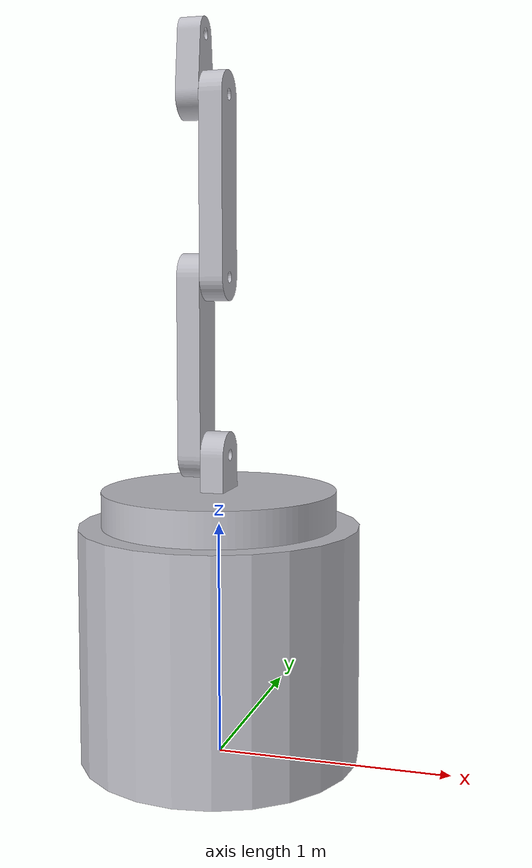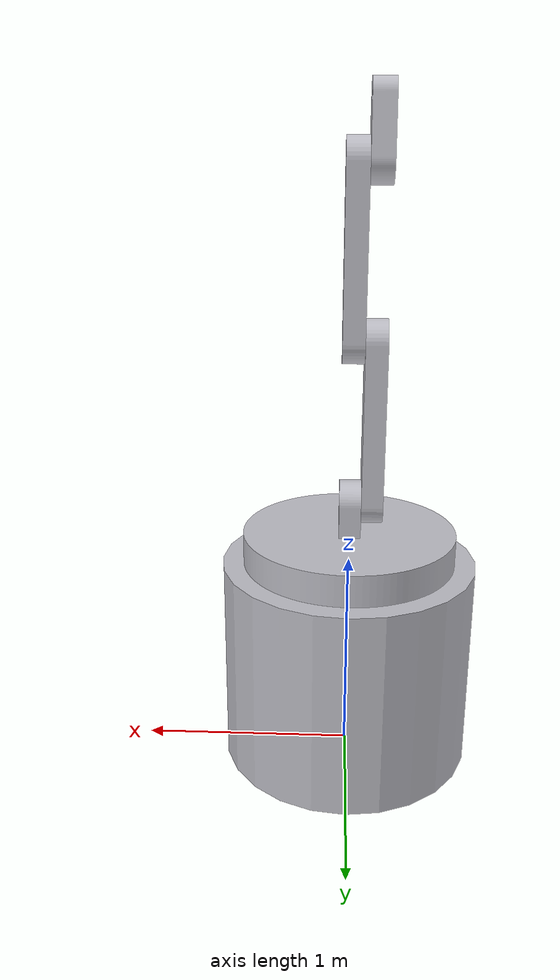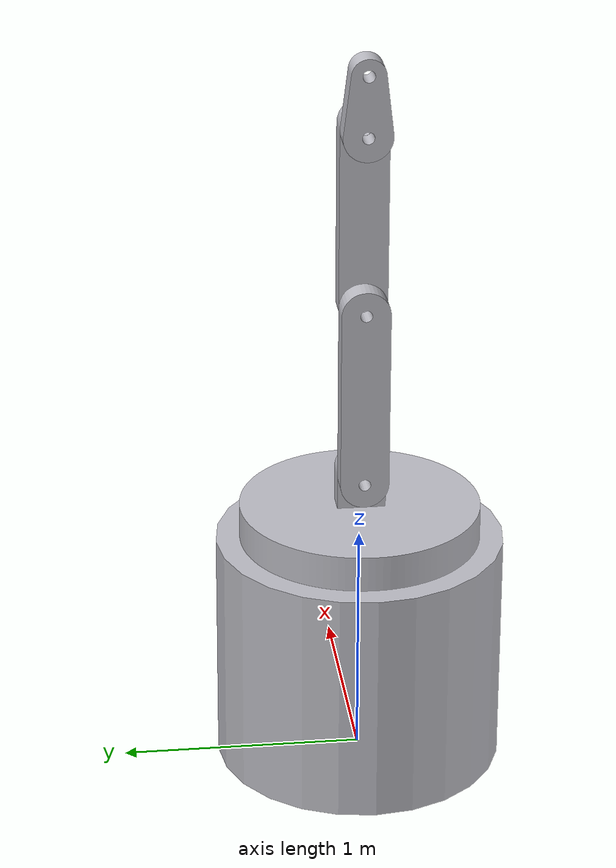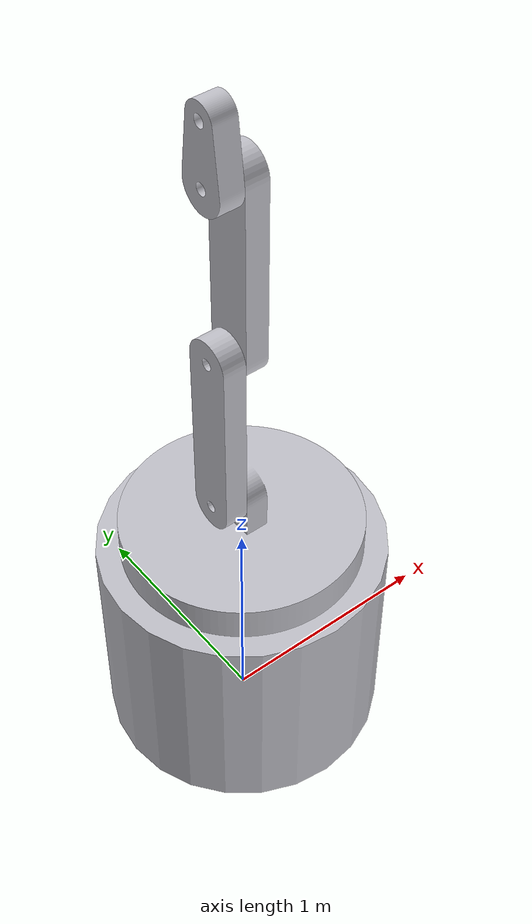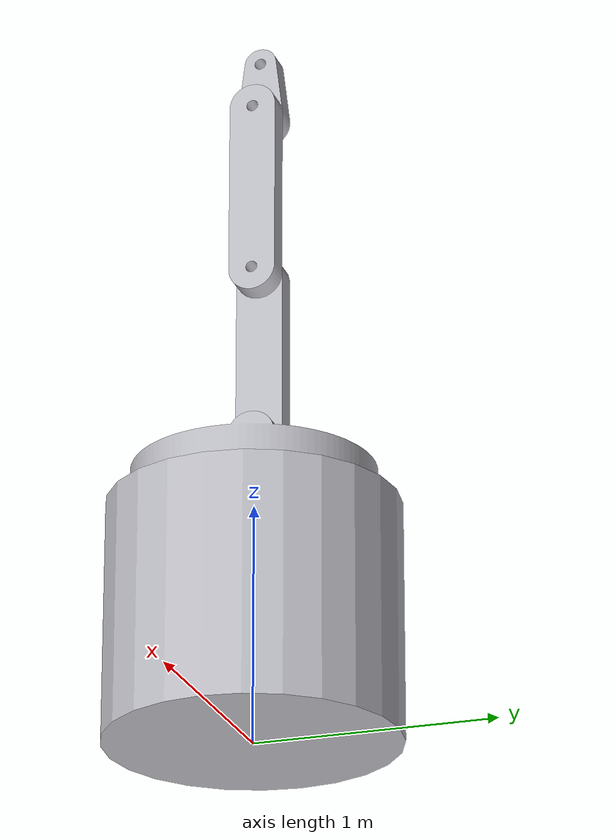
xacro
<?xml version="1.0"?>
<robot name="arm" xmlns:xacro="http://www.ros.org/wiki/xacro">

  <xacro:include filename="$(find SPARK-A-4DOF-ROS-ROBOTIC-ARM)/urdf/materials.xacro" />
  <xacro:include filename="$(find SPARK-A-4DOF-ROS-ROBOTIC-ARM)/urdf/arm.trans" />
  <xacro:include filename="$(find SPARK-A-4DOF-ROS-ROBOTIC-ARM)/urdf/arm.gazebo" />

  <!-- World link -->
  <link name="world"></link>

  <!-- base_link -->
  <link name="base_link">
    <inertial>
      <origin xyz="0 0 0" rpy="0 0 0" />
      <mass value="5" />
      <inertia ixx="0.5" iyy="0.5" izz="0.5" ixy="0.0" iyz="0.0" ixz="-0.0" />
    </inertial>

    <visual>
      <origin xyz="0 0 0" rpy="0 0 0" />
      <geometry>
        <cylinder radius="0.6" length="1" />
      </geometry>
      <material name="silver" />
    </visual>

    <collision>
      <origin xyz="0 0 0" rpy="0 0 0" />
      <geometry>
        <cylinder radius="0.61" length="1" />
      </geometry>
    </collision>
  </link>

  <!-- Link A -->
  <link name="link_A">
    <inertial>
      <origin xyz="0 0 0" rpy="0 0 0" />
      <mass value="2.1" />
      <inertia ixx="2.98" iyy="2.979" izz="5.854" ixy="0.0" iyz="0.0" ixz="-0.0" />
    </inertial>

    <visual>
      <origin xyz="0 0 0" rpy="0 0 0" />
      <geometry>
        <mesh filename="package://SPARK-A-4DOF-ROS-ROBOTIC-ARM/meshes/base_link.stl" scale="0.01 0.01 0.01" />
      </geometry>
      <material name="silver" />
    </visual>

    <collision>
      <origin xyz="0 0 0" rpy="0 0 0" />
      <geometry>
        <mesh filename="package://SPARK-A-4DOF-ROS-ROBOTIC-ARM/meshes/base_link.stl" scale="0.01 0.01 0.01" />
      </geometry>
    </collision>
  </link>

  <!-- Link B -->
  <link name="link_B">
    <inertial>
      <origin xyz="-0.05 0 0.375" rpy="0 0 0" />
      <mass value="1.4" />
      <inertia ixx="0.99" iyy="0.95" izz="0.06" ixy="0.0" iyz="0.0" ixz="-0.0" />
    </inertial>

    <visual>
      <origin xyz="0.05 0 -0.3" rpy="0 0 0" />
      <geometry>
        <mesh filename="package://SPARK-A-4DOF-ROS-ROBOTIC-ARM/meshes/Link_A_1.stl" scale="0.01 0.01 0.01" />
      </geometry>
      <material name="silver" />
    </visual>

    <collision>
      <origin xyz="0.05 -0.0 -0.3" rpy="0 0 0" />
      <geometry>
        <mesh filename="package://SPARK-A-4DOF-ROS-ROBOTIC-ARM/meshes/Link_A_1.stl" scale="0.01 0.01 0.01" />
      </geometry>
    </collision>
  </link>

  <!-- Link C -->
  <link name="link_C">
    <inertial>
      <origin xyz="0.05 0 0.375" rpy="0 0 0" />
      <mass value="1.4" />
      <inertia ixx="0.99" iyy="0.95" izz="0.06" ixy="0.0" iyz="-0.0" ixz="0.0" />
    </inertial>

    <visual>
      <origin xyz="0.05 -0.0 -1.05" rpy="0 0 0" />
      <geometry>
        <mesh filename="package://SPARK-A-4DOF-ROS-ROBOTIC-ARM/meshes/Link_B_1.stl" scale="0.01 0.01 0.01" />
      </geometry>
      <material name="silver" />
    </visual>

    <collision>
      <origin xyz="0.05 0.0 -1.05" rpy="0 0 0" />
      <geometry>
        <mesh filename="package://SPARK-A-4DOF-ROS-ROBOTIC-ARM/meshes/Link_B_1.stl" scale="0.01 0.01 0.01" />
      </geometry>
    </collision>
  </link>

  <!-- Link D -->
  <link name="end_effector">
    <inertial>
      <origin xyz="-0.1 0 0.25" rpy="0 0 0" />
      <mass value="1.4" />
      <inertia ixx="0.99" iyy="0.95" izz="0.06" ixy="0.0" iyz="-0.0" ixz="0.0" />
    </inertial>

    <visual>
      <origin xyz="-0.1 0.0 0.25" rpy="0 0 0" />
      <geometry>
        <mesh filename="package://SPARK-A-4DOF-ROS-ROBOTIC-ARM/meshes/end_effector.stl" scale="0.01 0.01 0.01" />
      </geometry>
      <material name="silver" />
    </visual>

    <collision>
      <origin xyz="-0.1 0.0 0.25" rpy="0 0 0" />
      <geometry>
        <mesh filename="package://SPARK-A-4DOF-ROS-ROBOTIC-ARM/meshes/end_effector.stl" scale="0.01 0.01 0.01" />
      </geometry>
    </collision>
  </link>

  <!-- Joining base to world -->
  <joint name="base_joint" type="fixed">
    <origin xyz="0 0 0.5" rpy="0 0 0" />
    <parent link="world" />
    <child link="base_link" />
  </joint>

  <!-- Joining link A to base -->
  <joint name="Rev1" type="continuous">
    <origin xyz="0 0 1" rpy="0 0 0" />
    <parent link="world" />
    <child link="link_A" />
    <axis xyz="0 0 1" />
  </joint>

  <!-- Joining link B to link A -->
  <joint name="Rev2" type="continuous">
    <origin xyz="-0.05 0.0 0.3" rpy="0 0 0" />
    <parent link="link_A" />
    <child link="link_B" />
    <axis xyz="1.0 0.0 0.0" />
  </joint>

  <!-- Joining link C to link B -->
  <joint name="Rev3" type="continuous">
    <origin xyz="0.0 0.0 0.75" rpy="0 0 0" />
    <parent link="link_B" />
    <child link="link_C" />
    <axis xyz="1.0 0.0 0.0" />
  </joint>

  <!-- Joining link D to link C -->
  <joint name="Rev4" type="continuous">
    <origin xyz="0.0 0.0 0.75" rpy="0 0 0" />
    <parent link="link_C" />
    <child link="end_effector" />
    <axis xyz="1.0 0.0 0.0" />
  </joint>

</robot>

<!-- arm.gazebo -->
<robot name="arm" xmlns:xacro="http://www.ros.org/wiki/xacro">

  <xacro:property name="body_color" value="Gazebo/Silver" />

  <gazebo>
    <plugin name="control" filename="libgazebo_ros_control.so" />
  </gazebo>

  <gazebo reference="base_link">
    <material>${body_color}</material>
    <mu1>0.2</mu1>
    <mu2>0.2</mu2>
    <selfCollide>true</selfCollide>
    <gravity>true</gravity>
    <material>Gazebo/Orange</material>
  </gazebo>

  <gazebo reference="link_A">
    <material>${body_color}</material>
    <mu1>0.2</mu1>
    <mu2>0.2</mu2>
    <selfCollide>true</selfCollide>
    <material>Gazebo/Yellow</material>
  </gazebo>

  <gazebo reference="link_B">
    <material>${body_color}</material>
    <mu1>0.2</mu1>
    <mu2>0.2</mu2>
    <selfCollide>true</selfCollide>
    <material>Gazebo/Green</material>
  </gazebo>

  <gazebo reference="link_C">
    <material>${body_color}</material>
    <mu1>0.2</mu1>
    <mu2>0.2</mu2>
    <material>Gazebo/Turquoise</material>
    <selfCollide>true</selfCollide>
  </gazebo>

  <gazebo reference="end_effector">
    <material>${body_color}</material>
    <mu1>0.2</mu1>
    <mu2>0.2</mu2>
    <material>Gazebo/Blue</material>
    <selfCollide>true</selfCollide>
  </gazebo>

</robot>
